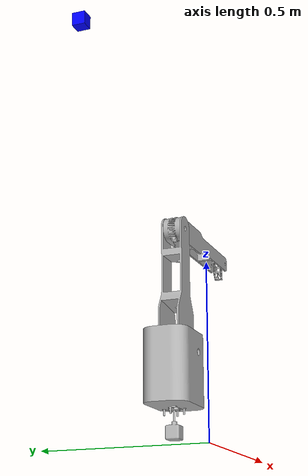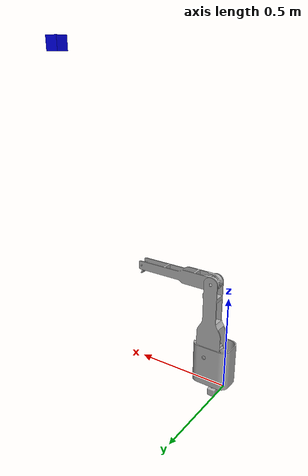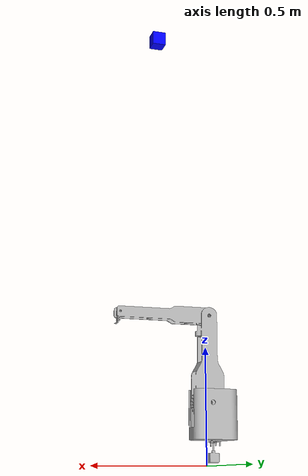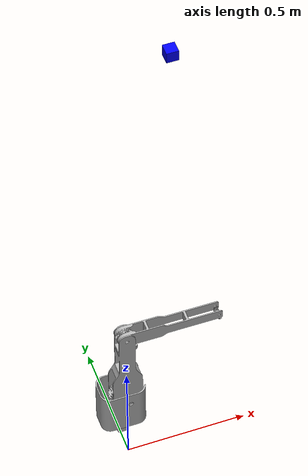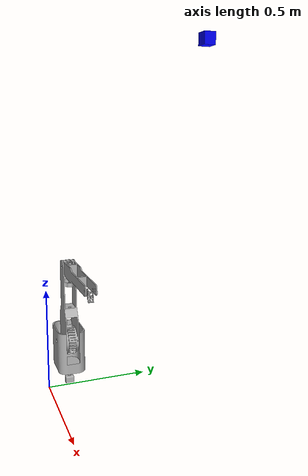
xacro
<?xml version="1.0"?>
<robot xmlns:xacro="http://www.ros.org/wiki/xacro" name="final">
    <xacro:arg name="initial_positions_file" default="initial_positions.yaml" />

    <!-- Import final urdf file -->
    <xacro:include filename="$(find final_description)/urdf/final.xacro" />

    <!-- Import control_xacro -->
    <xacro:include filename="final_description.ros2_control.xacro" />

    <xacro:final_ros2_control name="FakeSystem" initial_positions_file="$(arg initial_positions_file)"/>
</robot>

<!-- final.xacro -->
<robot name="final" xmlns:xacro="http://www.ros.org/wiki/xacro">
<xacro:include filename="$(find final_description)/urdf/materials.xacro" />
<xacro:include filename="$(find final_description)/urdf/final.trans" />
<xacro:include filename="$(find final_description)/urdf/final.gazebo" />
<xacro:include filename="$(find final_description)/urdf/final_include.xacro" />
<material name="grey">
        <color rgba="0.7 0.7 0.7 1"/>
    </material>
<link name="world"></link>

<joint name="world_to_base" type="fixed">
        <parent link="world" />
        <child link="base_link" />
        <origin  rpy="0 0 0" xyz="0 0 .1" />
    </joint>

<link name="base_link">
<inertial>
            <mass value="1.0"/>
            <origin xyz="0 0 0"/>
            <inertia ixx="0.1" ixy="0.0" ixz="0.0" iyy="0.1" iyz="0.0" izz="0.1"/>
        </inertial>
  <visual>
    <origin xyz="0 0 0" rpy="0 0 0"/>
    <geometry>
      <mesh filename="file://$(find final_description)/meshes/base_link.stl" scale="0.001 0.001 0.001"/>
    </geometry>
    <material name="grey"/>
  </visual>
  <collision>
    <origin xyz="0 0 0" rpy="0 0 0"/>
    <geometry>
      <mesh filename="file://$(find final_description)/meshes/base_link.stl" scale="0.001 0.001 0.001"/>
    </geometry>
  </collision>
</link>

<link name="sunconnector">
  <inertial>
    <origin xyz="3.290622982432545e-13 -9.536743103555345e-09 0.0152396655965897" rpy="0 0 0"/>
    <mass value="0.007456676389725328"/>
    <inertia ixx="1e-06" iyy="1e-06" izz="0.0" ixy="0.0" iyz="0.0" ixz="-0.0"/>
  </inertial>
  <visual>
    <origin xyz="-0.0075 -0.1025 0.037395" rpy="0 0 0"/>
    <geometry>
      <mesh filename="file://$(find final_description)/meshes/sunconnector.stl" scale="0.001 0.001 0.001"/>
    </geometry>
    <material name="grey"/>
  </visual>
  <collision>
    <origin xyz="-0.0075 -0.1025 0.037395" rpy="0 0 0"/>
    <geometry>
      <mesh filename="file://$(find final_description)/meshes/sunconnector.stl" scale="0.001 0.001 0.001"/>
    </geometry>
  </collision>
</link>

<link name="planetaryconnector">
  <inertial>
    <origin xyz="1.2191636589165e-14 -9.536743048044194e-09 0.0015295722361644247" rpy="0 0 0"/>
    <mass value="0.053040912421324096"/>
    <inertia ixx="1.1e-05" iyy="1.1e-05" izz="2e-05" ixy="0.0" iyz="0.0" ixz="-0.0"/>
  </inertial>
  <visual>
    <origin xyz="-0.0075 -0.1025 0.006915" rpy="0 0 0"/>
    <geometry>
      <mesh filename="file://$(find final_description)/meshes/planetaryconnector.stl" scale="0.001 0.001 0.001"/>
    </geometry>
    <material name="grey"/>
  </visual>
  <collision>
    <origin xyz="-0.0075 -0.1025 0.006915" rpy="0 0 0"/>
    <geometry>
      <mesh filename="file://$(find final_description)/meshes/planetaryconnector.stl" scale="0.001 0.001 0.001"/>
    </geometry>
  </collision>
</link>

<link name="armone">
  <inertial>
    <origin xyz="-0.008148761484235868 -9.536743020288618e-09 0.09559783618692533" rpy="0 0 0"/>
    <mass value="0.9905731051115977"/>
    <inertia ixx="0.006626" iyy="0.008233" izz="0.006574" ixy="0.0" iyz="0.0" ixz="0.000296"/>
  </inertial>
  <visual>
    <origin xyz="-0.0075 -0.1025 0.005137" rpy="0 0 0"/>
    <geometry>
      <mesh filename="file://$(find final_description)/meshes/armone.stl" scale="0.001 0.001 0.001"/>
    </geometry>
    <material name="grey"/>
  </visual>
  <collision>
    <origin xyz="-0.0075 -0.1025 0.005137" rpy="0 0 0"/>
    <geometry>
      <mesh filename="file://$(find final_description)/meshes/armone.stl" scale="0.001 0.001 0.001"/>
    </geometry>
  </collision>
</link>

<link name="gearone">
  <inertial>
    <origin xyz="0.0005995518268453459 -2.4232014186886808e-08 0.07866273581028918" rpy="0 0 0"/>
    <mass value="9.880467825044573"/>
    <inertia ixx="0.1341" iyy="0.139269" izz="0.013058" ixy="-0.0" iyz="-0.0" ixz="-0.000641"/>
  </inertial>
  <visual>
    <origin xyz="-0.0295 -0.1025 -0.153863" rpy="0 0 0"/>
    <geometry>
      <mesh filename="file://$(find final_description)/meshes/gearone.stl" scale="0.001 0.001 0.001"/>
    </geometry>
    <material name="grey"/>
  </visual>
  <collision>
    <origin xyz="-0.0295 -0.1025 -0.153863" rpy="0 0 0"/>
    <geometry>
      <mesh filename="file://$(find final_description)/meshes/gearone.stl" scale="0.001 0.001 0.001"/>
    </geometry>
  </collision>
</link>

<link name="gearthree">
  <inertial>
    <origin xyz="0.10632233944315062 -3.750772539778957e-09 3.936726586550865e-05" rpy="0 0 0"/>
    <mass value="3.3142167062879557"/>
    <inertia ixx="0.002162" iyy="0.049369" izz="0.049579" ixy="0.0" iyz="-0.0" ixz="9e-06"/>
  </inertial>
  <visual>
    <origin xyz="-0.0295 -0.1025 -0.518363" rpy="0 0 0"/>
    <geometry>
      <mesh filename="file://$(find final_description)/meshes/gearthree.stl" scale="0.001 0.001 0.001"/>
    </geometry>
    <material name="grey"/>
  </visual>
  <collision>
    <origin xyz="-0.0295 -0.1025 -0.518363" rpy="0 0 0"/>
    <geometry>
      <mesh filename="file://$(find final_description)/meshes/gearthree.stl" scale="0.001 0.001 0.001"/>
    </geometry>
  </collision>
</link>

<link name="manipulator">
  <inertial>
    <origin xyz="0.0019402690204358697 -9.536742284765864e-09 -0.022194034609853808" rpy="0 0 0"/>
    <mass value="0.0043871469606408635"/>
    <inertia ixx="2e-06" iyy="1e-06" izz="1e-06" ixy="-0.0" iyz="0.0" ixz="0.0"/>
  </inertial>
  <visual>
    <origin xyz="-0.4145 -0.1025 -0.518363" rpy="0 0 0"/>
    <geometry>
      <mesh filename="file://$(find final_description)/meshes/manipulator.stl" scale="0.001 0.001 0.001"/>
    </geometry>
    <material name="grey"/>
  </visual>
  <collision>
    <origin xyz="-0.4145 -0.1025 -0.518363" rpy="0 0 0"/>
    <geometry>
      <mesh filename="file://$(find final_description)/meshes/manipulator.stl" scale="0.001 0.001 0.001"/>
    </geometry>
  </collision>
</link>

<joint name="camera_joint" type="fixed">
  <parent link="base_link"/>
  <child link="camera_link"/>
  <origin xyz="0.4 0.6 1.5" rpy="0 1.57 -1.57"/>
</joint>

<link name="camera_link">
  <visual>
    <geometry>
      <box size="0.05 0.05 0.05"/>
    </geometry>
    <material name="blue">
      <color rgba="0.0 0.0 1.0 1.0"/>
    </material>
  </visual>
  <inertial>
    <mass value="1.0"/>
    <origin xyz="0 0 0"/>
    <inertia ixx="0.1" ixy="0.0" ixz="0.0" iyy="0.1" iyz="0.0" izz="0.1"/>
  </inertial>
</link>

<gazebo reference="camera_link">
  <sensor type="camera" name="camera">
    <update_rate>1</update_rate>
    <visualize>false</visualize>
    <camera>
      <horizontal_fov>1.396</horizontal_fov>
      <image>
        <width>320</width>
        <height>240</height>
        <format>R8G8B8</format>
      </image>
      <clip>
        <near>0.01</near>
        <far>5</far>
      </clip>
    </camera>
    <plugin name="camera_controller" filename="libgazebo_ros_camera.so">
      <alwaysOn>true</alwaysOn>
      <updateRate>1.0</updateRate>
      <cameraName>camera</cameraName>
      <frameName>camera_link</frameName>
    </plugin>
  </sensor>
</gazebo>

<joint name="Revolute 40" type="continuous">
  <origin xyz="0.0075 0.1025 -0.037395" rpy="0 0 0"/>
  <parent link="base_link"/>
  <child link="sunconnector"/>
  <axis xyz="-0.0 0.0 1.0"/>
</joint>

<joint name="Rigid 41" type="fixed">
  <origin xyz="0.0 0.0 0.03048" rpy="0 0 0"/>
  <parent link="sunconnector"/>
  <child link="planetaryconnector"/>
</joint>

<joint name="Rigid 42" type="fixed">
  <origin xyz="0.0 0.0 0.001778" rpy="0 0 0"/>
  <parent link="planetaryconnector"/>
  <child link="armone"/>
</joint>

<joint name="Revolute 43" type="continuous">
  <origin xyz="0.022 0.0 0.159" rpy="0 0 0"/>
  <parent link="armone"/>
  <child link="gearone"/>
  <axis xyz="-0.0 1.0 -0.0"/>
</joint>

<joint name="Revolute 44" type="continuous">
  <origin xyz="0.0 0.0 0.3645" rpy="0 0 0"/>
  <parent link="gearone"/>
  <child link="gearthree"/>
  <axis xyz="-0.0 1.0 -0.0"/>
</joint>

<joint name="Revolute 45" type="continuous">
  <origin xyz="0.385 0.0 0.0" rpy="0 0 0"/>
  <parent link="gearthree"/>
  <child link="manipulator"/>
  <axis xyz="-0.0 1.0 -0.0"/>
</joint>
<ros2_control name="GazeboSystem" type="system">
    <hardware>
        <plugin>gazebo_ros2_control/GazeboSystem</plugin>
    </hardware>
    <joint name="Revolute 40">
        <command_interface name="position"/>
        <state_interface name="position"/>
        <state_interface name="velocity"/>
    </joint>
    <joint name="Revolute 43">
        <command_interface name="position"/>
        <state_interface name="position"/>
        <state_interface name="velocity"/>
    </joint>
    <joint name="Revolute 44">
        <command_interface name="position"/>
        <state_interface name="position"/>
        <state_interface name="velocity"/>
    </joint>
    <joint name="Revolute 45">
        <command_interface name="position"/>
        <state_interface name="position"/>
        <state_interface name="velocity"/>
    </joint>
</ros2_control>
<gazebo>
    <plugin name="gazebo_ros2_control" filename="libgazebo_ros2_control.so">
        <parameters>$(find final_description_moveit_config)/config/ros2_controllers.yaml</parameters>
    </plugin>
</gazebo>
</robot>

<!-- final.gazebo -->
<robot name="final" xmlns:xacro="http://www.ros.org/wiki/xacro" >

<xacro:property name="body_color" value="Gazebo/Silver" />

<gazebo>
</gazebo>
<gazebo reference="base_link">
  <material>${body_color}</material>
  <mu1>0.2</mu1>
  <mu2>0.2</mu2>
  <self_collide>true</self_collide>
  <gravity>true</gravity>
</gazebo>

<gazebo reference="sunconnector">
  <material>${body_color}</material>
  <mu1>0.2</mu1>
  <mu2>0.2</mu2>
  <self_collide>true</self_collide>
</gazebo>

<gazebo reference="planetaryconnector">
  <material>${body_color}</material>
  <mu1>0.2</mu1>
  <mu2>0.2</mu2>
  <self_collide>true</self_collide>
</gazebo>

<gazebo reference="armone">
  <material>${body_color}</material>
  <mu1>0.2</mu1>
  <mu2>0.2</mu2>
  <self_collide>true</self_collide>
</gazebo>

<gazebo reference="gearone">
  <material>${body_color}</material>
  <mu1>0.2</mu1>
  <mu2>0.2</mu2>
  <self_collide>true</self_collide>
</gazebo>

<gazebo reference="gearthree">
  <material>${body_color}</material>
  <mu1>0.2</mu1>
  <mu2>0.2</mu2>
  <self_collide>true</self_collide>
</gazebo>

<gazebo reference="manipulator">
  <material>${body_color}</material>
  <mu1>0.2</mu1>
  <mu2>0.2</mu2>
  <self_collide>true</self_collide>
</gazebo>

</robot>
